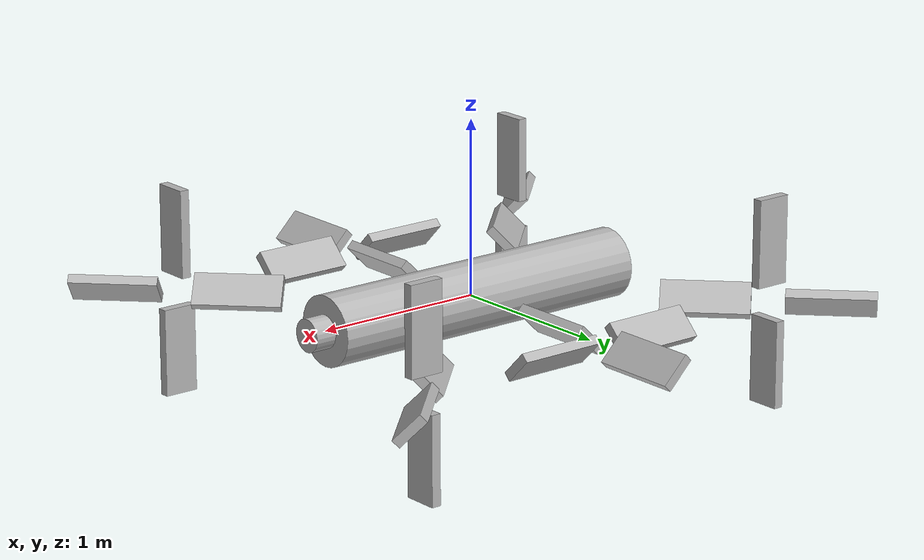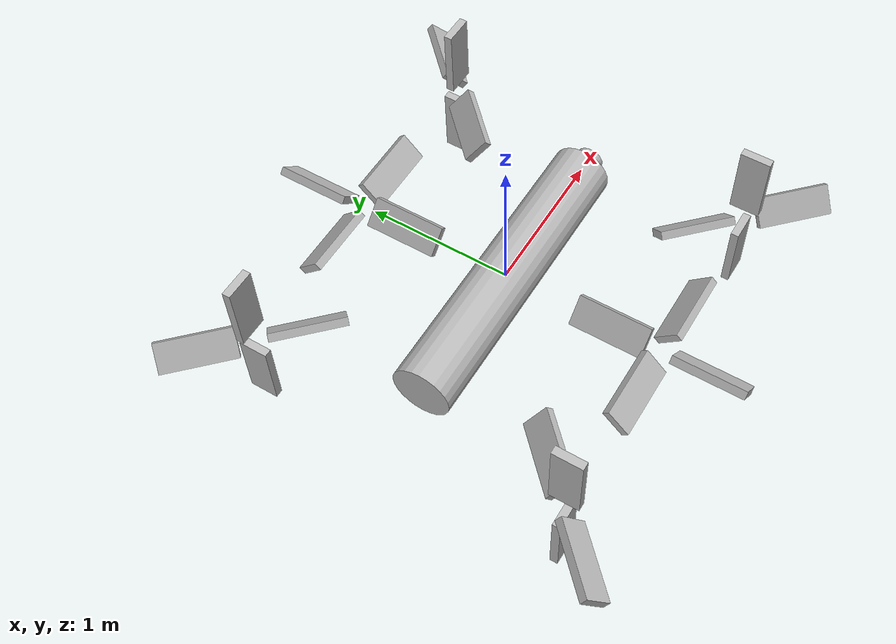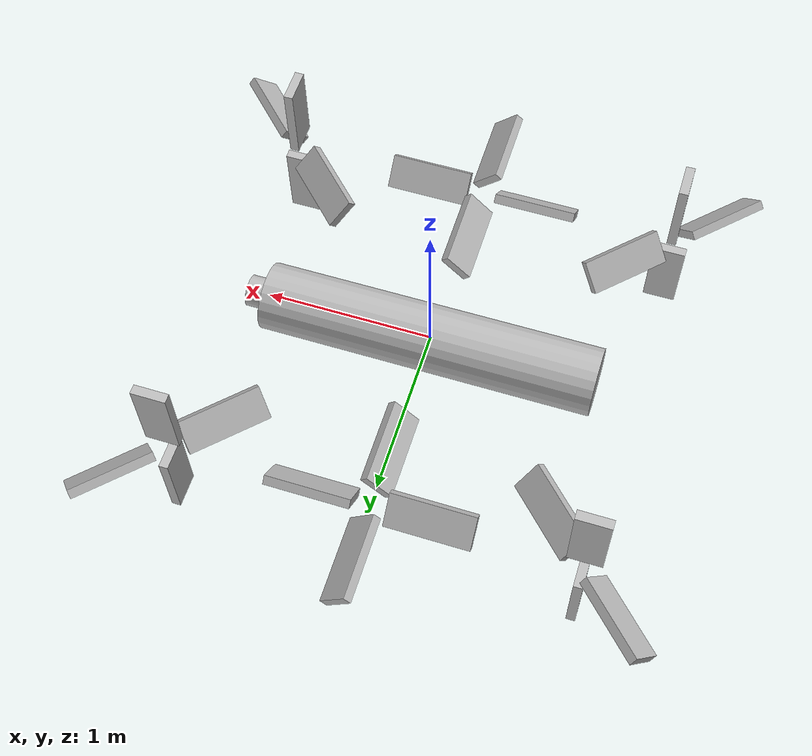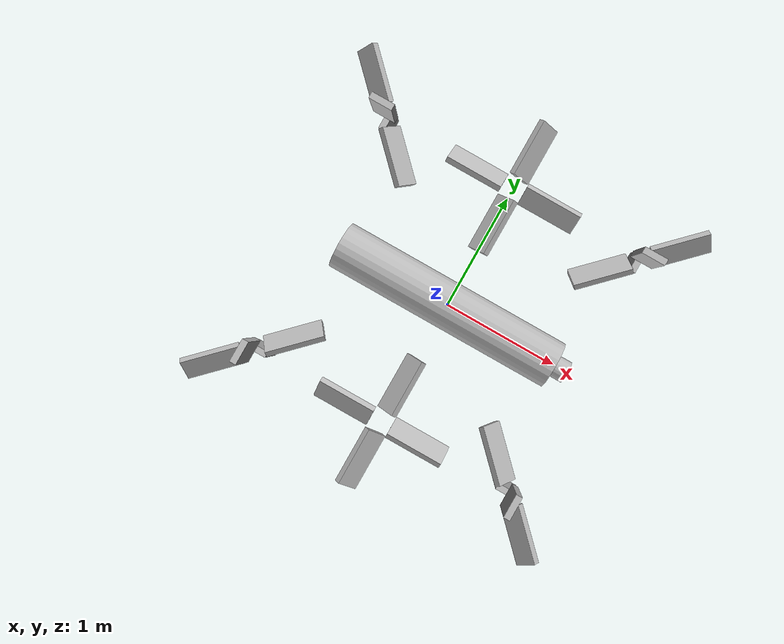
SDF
<?xml version="1.0" ?>
<sdf version="1.6">
  <world name="buoyancy">

    <physics name="1ms" type="ode">
      <max_step_size>0.001</max_step_size>
      <real_time_factor>1.0</real_time_factor>
    </physics>
    <plugin
      filename="libignition-gazebo-physics-system.so"
      name="ignition::gazebo::systems::Physics">
    </plugin>
    <plugin
      filename="libignition-gazebo-user-commands-system.so"
      name="ignition::gazebo::systems::UserCommands">
    </plugin>
    <plugin
      filename="libignition-gazebo-scene-broadcaster-system.so"
      name="ignition::gazebo::systems::SceneBroadcaster">
    </plugin>
    <plugin
      filename="libignition-gazebo-imu-system.so"
      name="ignition::gazebo::systems::Imu">
    </plugin>
    <plugin
      filename="libignition-gazebo-buoyancy-system.so"
      name="ignition::gazebo::systems::Buoyancy">
      <uniform_fluid_density>1000</uniform_fluid_density>
    </plugin>

    <gui fullscreen="0">

      <!-- 3D scene -->
      <plugin filename="GzScene3D" name="3D View">
        <ignition-gui>
          <title>3D View</title>
          <property type="bool" key="showTitleBar">false</property>
          <property type="string" key="state">docked</property>
        </ignition-gui>

        <engine>ogre2</engine>
        <scene>scene</scene>
        <ambient_light>0.4 0.4 0.4</ambient_light>
        <background_color>0.8 0.8 0.8</background_color>
        <camera_pose>-6 0 6 0 0.5 0</camera_pose>
      </plugin>

      <!-- World control -->
      <plugin filename="WorldControl" name="World control">
        <ignition-gui>
          <title>World control</title>
          <property type="bool" key="showTitleBar">false</property>
          <property type="bool" key="resizable">false</property>
          <property type="double" key="height">72</property>
          <property type="double" key="width">121</property>
          <property type="double" key="z">1</property>

          <property type="string" key="state">floating</property>
          <anchors target="3D View">
            <line own="left" target="left"/>
            <line own="bottom" target="bottom"/>
          </anchors>
        </ignition-gui>

        <play_pause>true</play_pause>
        <step>true</step>
        <start_paused>true</start_paused>
        <service>/world/buoyancy/control</service>
        <stats_topic>/world/buoyancy/stats</stats_topic>

      </plugin>

      <!-- World statistics -->
      <plugin filename="WorldStats" name="World stats">
        <ignition-gui>
          <title>World stats</title>
          <property type="bool" key="showTitleBar">false</property>
          <property type="bool" key="resizable">false</property>
          <property type="double" key="height">110</property>
          <property type="double" key="width">290</property>
          <property type="double" key="z">1</property>

          <property type="string" key="state">floating</property>
          <anchors target="3D View">
            <line own="right" target="right"/>
            <line own="bottom" target="bottom"/>
          </anchors>
        </ignition-gui>

        <sim_time>true</sim_time>
        <real_time>true</real_time>
        <real_time_factor>true</real_time_factor>
        <iterations>true</iterations>
        <topic>/world/buoyancy/stats</topic>
      </plugin>

    </gui>

    <light type="directional" name="sun">
      <cast_shadows>true</cast_shadows>
      <pose>0 0 10 0 0 0</pose>
      <diffuse>1 1 1 1</diffuse>
      <specular>0.5 0.5 0.5 1</specular>
      <attenuation>
        <range>1000</range>
        <constant>0.9</constant>
        <linear>0.01</linear>
        <quadratic>0.001</quadratic>
      </attenuation>
      <direction>-0.5 0.1 -0.9</direction>
    </light>

    <model name='submarine'>
      <pose>0 0 0 0 0 0</pose>
      <link name='body'>
        <pose>0 0 0 0 1.5707963 0</pose>
        <inertial>
          <mass>251.32741228718348</mass>
          <inertia>
            <ixx>86.28907821859966</ixx>
            <ixy>0</ixy>
            <ixz>0</ixz>
            <iyy>86.28907821859966</iyy>
            <iyz>0</iyz>
            <izz>5.026548245743671</izz>
          </inertia>
        </inertial>

        <visual name='body_visual'>
          <geometry>
            <cylinder>
              <radius>0.2</radius>
              <length>2</length>
            </cylinder>
          </geometry>
        </visual>
        <collision name='body_collision'>
          <geometry>
            <cylinder>
              <radius>0.2</radius>
              <length>2</length>
            </cylinder>
          </geometry>
        </collision>

        <visual name='spacer_visual'>
          <pose>0 0 1.05855 0 0 0</pose>
          <geometry>
            <cylinder>
              <radius>0.0933402</radius>
              <length>0.127211</length>
            </cylinder>
          </geometry>
        </visual>

        <sensor name="imu_sensor" type="imu">
          <pose>0 0 0 3.141593 -1.5707963 0</pose>
          <always_on>1</always_on>
          <update_rate>1000.0</update_rate>
        </sensor>

      </link>

      <link name='thruster1'>
        <pose>1.2 -1.1 0 1.5707963 1.5707963 -0.78539815</pose>
        <inertial>
          <mass>21.820000000000004</mass>
          <inertia>
            <ixx>0.45999415237916674</ixx>
            <ixy>0</ixy>
            <ixz>0</ixz>
            <iyy>0.45999415237916674</iyy>
            <iyz>0</iyz>
            <izz>0.9091666666666668</izz>
          </inertia>
        </inertial>

        <visual name="blade1_visual">
          <pose>0.3433402 0.0 0 -0.7853981633974483 0 0.0</pose>
          <geometry>
            <box>
              <size>0.5 0.2 0.05455</size>
            </box>
          </geometry>
        </visual>
        <collision name="blade1_collision">
          <pose>0.3433402 0.0 0 -0.7853981633974483 0 0.0</pose>
          <geometry>
            <box>
              <size>0.5 0.2 0.05455</size>
            </box>
          </geometry>
        </collision>

        <visual name="blade2_visual">
          <pose>0.0 0.3433402 0 -0.7853981633974483 0 1.5707963267948966</pose>
          <geometry>
            <box>
              <size>0.5 0.2 0.05455</size>
            </box>
          </geometry>
        </visual>
        <collision name="blade2_collision">
          <pose>0.0 0.3433402 0 -0.7853981633974483 0 1.5707963267948966</pose>
          <geometry>
            <box>
              <size>0.5 0.2 0.05455</size>
            </box>
          </geometry>
        </collision>

        <visual name="blade3_visual">
          <pose>-0.3433402 -0.0 0 0.7853981633974483 0 0.0</pose>
          <geometry>
            <box>
              <size>0.5 0.2 0.05455</size>
            </box>
          </geometry>
        </visual>
        <collision name="blade3_collision">
          <pose>-0.3433402 -0.0 0 0.7853981633974483 0 0.0</pose>
          <geometry>
            <box>
              <size>0.5 0.2 0.05455</size>
            </box>
          </geometry>
        </collision>

        <visual name="blade4_visual">
          <pose>-0.0 -0.3433402 0 0.7853981633974483 0 1.5707963267948966</pose>
          <geometry>
            <box>
              <size>0.5 0.2 0.05455</size>
            </box>
          </geometry>
        </visual>
        <collision name="blade4_collision">
          <pose>-0.0 -0.3433402 0 0.7853981633974483 0 1.5707963267948966</pose>
          <geometry>
            <box>
              <size>0.5 0.2 0.05455</size>
            </box>
          </geometry>
        </collision>

      </link>

      <joint name='thruster1_joint' type='revolute'>
        <parent>body</parent>
        <child>thruster1</child>
        <axis>
          <xyz>0 0 -1</xyz>
          <use_parent_model_frame>0</use_parent_model_frame>
          <limit>
            <lower>-1e+12</lower>
            <upper>1e+12</upper>
            <effort>-1</effort>
            <velocity>-1</velocity>
          </limit>
        </axis>
      </joint>

      <link name='thruster2'>
        <pose>1.2 1.1 0 1.5707963 1.5707963 3.92699075</pose>
        <inertial>
          <mass>21.820000000000004</mass>
          <inertia>
            <ixx>0.45999415237916674</ixx>
            <ixy>0</ixy>
            <ixz>0</ixz>
            <iyy>0.45999415237916674</iyy>
            <iyz>0</iyz>
            <izz>0.9091666666666668</izz>
          </inertia>
        </inertial>

        <visual name="blade1_visual">
          <pose>0.3433402 0.0 0 -0.7853981633974483 0 0.0</pose>
          <geometry>
            <box>
              <size>0.5 0.2 0.05455</size>
            </box>
          </geometry>
        </visual>
        <collision name="blade1_collision">
          <pose>0.3433402 0.0 0 -0.7853981633974483 0 0.0</pose>
          <geometry>
            <box>
              <size>0.5 0.2 0.05455</size>
            </box>
          </geometry>
        </collision>

        <visual name="blade2_visual">
          <pose>0.0 0.3433402 0 -0.7853981633974483 0 1.5707963267948966</pose>
          <geometry>
            <box>
              <size>0.5 0.2 0.05455</size>
            </box>
          </geometry>
        </visual>
        <collision name="blade2_collision">
          <pose>0.0 0.3433402 0 -0.7853981633974483 0 1.5707963267948966</pose>
          <geometry>
            <box>
              <size>0.5 0.2 0.05455</size>
            </box>
          </geometry>
        </collision>

        <visual name="blade3_visual">
          <pose>-0.3433402 -0.0 0 0.7853981633974483 0 0.0</pose>
          <geometry>
            <box>
              <size>0.5 0.2 0.05455</size>
            </box>
          </geometry>
        </visual>
        <collision name="blade3_collision">
          <pose>-0.3433402 -0.0 0 0.7853981633974483 0 0.0</pose>
          <geometry>
            <box>
              <size>0.5 0.2 0.05455</size>
            </box>
          </geometry>
        </collision>

        <visual name="blade4_visual">
          <pose>-0.0 -0.3433402 0 0.7853981633974483 0 1.5707963267948966</pose>
          <geometry>
            <box>
              <size>0.5 0.2 0.05455</size>
            </box>
          </geometry>
        </visual>
        <collision name="blade4_collision">
          <pose>-0.0 -0.3433402 0 0.7853981633974483 0 1.5707963267948966</pose>
          <geometry>
            <box>
              <size>0.5 0.2 0.05455</size>
            </box>
          </geometry>
        </collision>

      </link>

      <joint name='thruster2_joint' type='revolute'>
        <parent>body</parent>
        <child>thruster2</child>
        <axis>
          <xyz>0 0 -1</xyz>
          <use_parent_model_frame>0</use_parent_model_frame>
          <limit>
            <lower>-1e+12</lower>
            <upper>1e+12</upper>
            <effort>-1</effort>
            <velocity>-1</velocity>
          </limit>
        </axis>
      </joint>

      <link name='thruster3'>
        <pose>-1.2 -1.1 0 1.5707963 1.5707963 0.78540075</pose>
        <inertial>
          <mass>21.820000000000004</mass>
          <inertia>
            <ixx>0.45999415237916674</ixx>
            <ixy>0</ixy>
            <ixz>0</ixz>
            <iyy>0.45999415237916674</iyy>
            <iyz>0</iyz>
            <izz>0.9091666666666668</izz>
          </inertia>
        </inertial>

        <visual name="blade1_visual">
          <pose>0.3433402 0.0 0 0.7853981633974483 0 0.0</pose>
          <geometry>
            <box>
              <size>0.5 0.2 0.05455</size>
            </box>
          </geometry>
        </visual>
        <collision name="blade1_collision">
          <pose>0.3433402 0.0 0 0.7853981633974483 0 0.0</pose>
          <geometry>
            <box>
              <size>0.5 0.2 0.05455</size>
            </box>
          </geometry>
        </collision>

        <visual name="blade2_visual">
          <pose>0.0 0.3433402 0 0.7853981633974483 0 1.5707963267948966</pose>
          <geometry>
            <box>
              <size>0.5 0.2 0.05455</size>
            </box>
          </geometry>
        </visual>
        <collision name="blade2_collision">
          <pose>0.0 0.3433402 0 0.7853981633974483 0 1.5707963267948966</pose>
          <geometry>
            <box>
              <size>0.5 0.2 0.05455</size>
            </box>
          </geometry>
        </collision>

        <visual name="blade3_visual">
          <pose>-0.3433402 -0.0 0 -0.7853981633974483 0 0.0</pose>
          <geometry>
            <box>
              <size>0.5 0.2 0.05455</size>
            </box>
          </geometry>
        </visual>
        <collision name="blade3_collision">
          <pose>-0.3433402 -0.0 0 -0.7853981633974483 0 0.0</pose>
          <geometry>
            <box>
              <size>0.5 0.2 0.05455</size>
            </box>
          </geometry>
        </collision>

        <visual name="blade4_visual">
          <pose>-0.0 -0.3433402 0 -0.7853981633974483 0 1.5707963267948966</pose>
          <geometry>
            <box>
              <size>0.5 0.2 0.05455</size>
            </box>
          </geometry>
        </visual>
        <collision name="blade4_collision">
          <pose>-0.0 -0.3433402 0 -0.7853981633974483 0 1.5707963267948966</pose>
          <geometry>
            <box>
              <size>0.5 0.2 0.05455</size>
            </box>
          </geometry>
        </collision>

      </link>

      <joint name='thruster3_joint' type='revolute'>
        <parent>body</parent>
        <child>thruster3</child>
        <axis>
          <xyz>0 0 -1</xyz>
          <use_parent_model_frame>0</use_parent_model_frame>
          <limit>
            <lower>-1e+12</lower>
            <upper>1e+12</upper>
            <effort>-1</effort>
            <velocity>-1</velocity>
          </limit>
        </axis>
      </joint>

      <link name='thruster4'>
        <pose>-1.2 1.1 0 1.5707963 1.5707963 2.35619445</pose>
        <inertial>
          <mass>21.820000000000004</mass>
          <inertia>
            <ixx>0.45999415237916674</ixx>
            <ixy>0</ixy>
            <ixz>0</ixz>
            <iyy>0.45999415237916674</iyy>
            <iyz>0</iyz>
            <izz>0.9091666666666668</izz>
          </inertia>
        </inertial>

        <visual name="blade1_visual">
          <pose>0.3433402 0.0 0 0.7853981633974483 0 0.0</pose>
          <geometry>
            <box>
              <size>0.5 0.2 0.05455</size>
            </box>
          </geometry>
        </visual>
        <collision name="blade1_collision">
          <pose>0.3433402 0.0 0 0.7853981633974483 0 0.0</pose>
          <geometry>
            <box>
              <size>0.5 0.2 0.05455</size>
            </box>
          </geometry>
        </collision>

        <visual name="blade2_visual">
          <pose>0.0 0.3433402 0 0.7853981633974483 0 1.5707963267948966</pose>
          <geometry>
            <box>
              <size>0.5 0.2 0.05455</size>
            </box>
          </geometry>
        </visual>
        <collision name="blade2_collision">
          <pose>0.0 0.3433402 0 0.7853981633974483 0 1.5707963267948966</pose>
          <geometry>
            <box>
              <size>0.5 0.2 0.05455</size>
            </box>
          </geometry>
        </collision>

        <visual name="blade3_visual">
          <pose>-0.3433402 -0.0 0 -0.7853981633974483 0 0.0</pose>
          <geometry>
            <box>
              <size>0.5 0.2 0.05455</size>
            </box>
          </geometry>
        </visual>
        <collision name="blade3_collision">
          <pose>-0.3433402 -0.0 0 -0.7853981633974483 0 0.0</pose>
          <geometry>
            <box>
              <size>0.5 0.2 0.05455</size>
            </box>
          </geometry>
        </collision>

        <visual name="blade4_visual">
          <pose>-0.0 -0.3433402 0 -0.7853981633974483 0 1.5707963267948966</pose>
          <geometry>
            <box>
              <size>0.5 0.2 0.05455</size>
            </box>
          </geometry>
        </visual>
        <collision name="blade4_collision">
          <pose>-0.0 -0.3433402 0 -0.7853981633974483 0 1.5707963267948966</pose>
          <geometry>
            <box>
              <size>0.5 0.2 0.05455</size>
            </box>
          </geometry>
        </collision>

      </link>

      <joint name='thruster4_joint' type='revolute'>
        <parent>body</parent>
        <child>thruster4</child>
        <axis>
          <xyz>0 0 -1</xyz>
          <use_parent_model_frame>0</use_parent_model_frame>
          <limit>
            <lower>-1e+12</lower>
            <upper>1e+12</upper>
            <effort>-1</effort>
            <velocity>-1</velocity>
          </limit>
        </axis>
      </joint>

      <link name='thruster5'>
        <pose>0 -1.1 0 3.1415926 0 0</pose>
        <inertial>
          <mass>21.820000000000004</mass>
          <inertia>
            <ixx>0.45999415237916674</ixx>
            <ixy>0</ixy>
            <ixz>0</ixz>
            <iyy>0.45999415237916674</iyy>
            <iyz>0</iyz>
            <izz>0.9091666666666668</izz>
          </inertia>
        </inertial>

        <visual name="blade1_visual">
          <pose>0.3433402 0.0 0 -0.7853981633974483 0 0.0</pose>
          <geometry>
            <box>
              <size>0.5 0.2 0.05455</size>
            </box>
          </geometry>
        </visual>
        <collision name="blade1_collision">
          <pose>0.3433402 0.0 0 -0.7853981633974483 0 0.0</pose>
          <geometry>
            <box>
              <size>0.5 0.2 0.05455</size>
            </box>
          </geometry>
        </collision>

        <visual name="blade2_visual">
          <pose>0.0 0.3433402 0 -0.7853981633974483 0 1.5707963267948966</pose>
          <geometry>
            <box>
              <size>0.5 0.2 0.05455</size>
            </box>
          </geometry>
        </visual>
        <collision name="blade2_collision">
          <pose>0.0 0.3433402 0 -0.7853981633974483 0 1.5707963267948966</pose>
          <geometry>
            <box>
              <size>0.5 0.2 0.05455</size>
            </box>
          </geometry>
        </collision>

        <visual name="blade3_visual">
          <pose>-0.3433402 -0.0 0 0.7853981633974483 0 0.0</pose>
          <geometry>
            <box>
              <size>0.5 0.2 0.05455</size>
            </box>
          </geometry>
        </visual>
        <collision name="blade3_collision">
          <pose>-0.3433402 -0.0 0 0.7853981633974483 0 0.0</pose>
          <geometry>
            <box>
              <size>0.5 0.2 0.05455</size>
            </box>
          </geometry>
        </collision>

        <visual name="blade4_visual">
          <pose>-0.0 -0.3433402 0 0.7853981633974483 0 1.5707963267948966</pose>
          <geometry>
            <box>
              <size>0.5 0.2 0.05455</size>
            </box>
          </geometry>
        </visual>
        <collision name="blade4_collision">
          <pose>-0.0 -0.3433402 0 0.7853981633974483 0 1.5707963267948966</pose>
          <geometry>
            <box>
              <size>0.5 0.2 0.05455</size>
            </box>
          </geometry>
        </collision>

      </link>

      <joint name='thruster5_joint' type='revolute'>
        <parent>body</parent>
        <child>thruster5</child>
        <axis>
          <xyz>0 0 -1</xyz>
          <use_parent_model_frame>0</use_parent_model_frame>
          <limit>
            <lower>-1e+12</lower>
            <upper>1e+12</upper>
            <effort>-1</effort>
            <velocity>-1</velocity>
          </limit>
        </axis>
      </joint>

      <link name='thruster6'>
        <pose>0 1.1 0 3.1415926 0 0</pose>
        <inertial>
          <mass>21.820000000000004</mass>
          <inertia>
            <ixx>0.45999415237916674</ixx>
            <ixy>0</ixy>
            <ixz>0</ixz>
            <iyy>0.45999415237916674</iyy>
            <iyz>0</iyz>
            <izz>0.9091666666666668</izz>
          </inertia>
        </inertial>

        <visual name="blade1_visual">
          <pose>0.3433402 0.0 0 0.7853981633974483 0 0.0</pose>
          <geometry>
            <box>
              <size>0.5 0.2 0.05455</size>
            </box>
          </geometry>
        </visual>
        <collision name="blade1_collision">
          <pose>0.3433402 0.0 0 0.7853981633974483 0 0.0</pose>
          <geometry>
            <box>
              <size>0.5 0.2 0.05455</size>
            </box>
          </geometry>
        </collision>

        <visual name="blade2_visual">
          <pose>0.0 0.3433402 0 0.7853981633974483 0 1.5707963267948966</pose>
          <geometry>
            <box>
              <size>0.5 0.2 0.05455</size>
            </box>
          </geometry>
        </visual>
        <collision name="blade2_collision">
          <pose>0.0 0.3433402 0 0.7853981633974483 0 1.5707963267948966</pose>
          <geometry>
            <box>
              <size>0.5 0.2 0.05455</size>
            </box>
          </geometry>
        </collision>

        <visual name="blade3_visual">
          <pose>-0.3433402 -0.0 0 -0.7853981633974483 0 0.0</pose>
          <geometry>
            <box>
              <size>0.5 0.2 0.05455</size>
            </box>
          </geometry>
        </visual>
        <collision name="blade3_collision">
          <pose>-0.3433402 -0.0 0 -0.7853981633974483 0 0.0</pose>
          <geometry>
            <box>
              <size>0.5 0.2 0.05455</size>
            </box>
          </geometry>
        </collision>

        <visual name="blade4_visual">
          <pose>-0.0 -0.3433402 0 -0.7853981633974483 0 1.5707963267948966</pose>
          <geometry>
            <box>
              <size>0.5 0.2 0.05455</size>
            </box>
          </geometry>
        </visual>
        <collision name="blade4_collision">
          <pose>-0.0 -0.3433402 0 -0.7853981633974483 0 1.5707963267948966</pose>
          <geometry>
            <box>
              <size>0.5 0.2 0.05455</size>
            </box>
          </geometry>
        </collision>

      </link>

      <joint name='thruster6_joint' type='revolute'>
        <parent>body</parent>
        <child>thruster6</child>
        <axis>
          <xyz>0 0 -1</xyz>
          <use_parent_model_frame>0</use_parent_model_frame>
          <limit>
            <lower>-1e+12</lower>
            <upper>1e+12</upper>
            <effort>-1</effort>
            <velocity>-1</velocity>
          </limit>
        </axis>
      </joint>

      <plugin
        filename="libignition-gazebo-joint-state-publisher-system.so"
	name="ignition::gazebo::systems::JointStatePublisher">
      </plugin>

      <plugin
        filename="libignition-gazebo-apply-joint-force-system.so"
        name="ignition::gazebo::systems::ApplyJointForce">
        <joint_name>thruster1_joint</joint_name>
      </plugin>
      <plugin
        filename="libignition-gazebo-apply-joint-force-system.so"
        name="ignition::gazebo::systems::ApplyJointForce">
        <joint_name>thruster2_joint</joint_name>
      </plugin>
      <plugin
        filename="libignition-gazebo-apply-joint-force-system.so"
        name="ignition::gazebo::systems::ApplyJointForce">
        <joint_name>thruster3_joint</joint_name>
      </plugin>
      <plugin
        filename="libignition-gazebo-apply-joint-force-system.so"
        name="ignition::gazebo::systems::ApplyJointForce">
        <joint_name>thruster4_joint</joint_name>
      </plugin>
      <plugin
        filename="libignition-gazebo-apply-joint-force-system.so"
        name="ignition::gazebo::systems::ApplyJointForce">
        <joint_name>thruster5_joint</joint_name>
      </plugin>
      <plugin
        filename="libignition-gazebo-apply-joint-force-system.so"
        name="ignition::gazebo::systems::ApplyJointForce">
        <joint_name>thruster6_joint</joint_name>
      </plugin>

      <plugin
        filename="libignition-gazebo-lift-drag-system.so"
        name="ignition::gazebo::systems::LiftDrag">
        <air_density>1000</air_density>
        <cla>1.2535816618911175</cla>
        <cla_stall>-1.4326647564469914</cla_stall>
        <cda>0</cda>
        <cda_stall>1.4326647564469914</cda_stall>
        <alpha_stall>1.396</alpha_stall>
        <a0>0</a0>
        <area>0.4</area>
        <upward>0 -0.7071067811865476 -0.7071067811865475</upward>
        <forward>0 -0.7071067811865475 0.7071067811865476</forward>
        <link_name>thruster1</link_name>
        <cp>0.35 0 0</cp>
      </plugin>

      <plugin
        filename="libignition-gazebo-lift-drag-system.so"
        name="ignition::gazebo::systems::LiftDrag">
        <air_density>1000</air_density>
        <cla>1.2535816618911175</cla>
        <cla_stall>-1.4326647564469914</cla_stall>
        <cda>0</cda>
        <cda_stall>1.4326647564469914</cda_stall>
        <alpha_stall>1.396</alpha_stall>
        <a0>0</a0>
        <area>0.4</area>
        <upward>0 -0.7071067811865476 -0.7071067811865475</upward>
        <forward>0 -0.7071067811865475 0.7071067811865476</forward>
        <link_name>thruster2</link_name>
        <cp>0.35 0 0</cp>
      </plugin>

      <plugin
        filename="libignition-gazebo-lift-drag-system.so"
        name="ignition::gazebo::systems::LiftDrag">
        <air_density>1000</air_density>
        <cla>1.2535816618911175</cla>
        <cla_stall>-1.4326647564469914</cla_stall>
        <cda>0</cda>
        <cda_stall>1.4326647564469914</cda_stall>
        <alpha_stall>1.396</alpha_stall>
        <a0>0</a0>
        <area>0.27637</area>
        <upward>0 -0.7071067811865476 0.7071067811865475</upward>
        <forward>0 -0.7071067811865475 -0.7071067811865476</forward>
        <link_name>thruster3</link_name>
        <cp>0.35 0 0</cp>
      </plugin>

      <plugin
        filename="libignition-gazebo-lift-drag-system.so"
        name="ignition::gazebo::systems::LiftDrag">
        <air_density>1000</air_density>
        <cla>1.2535816618911175</cla>
        <cla_stall>-1.4326647564469914</cla_stall>
        <cda>0</cda>
        <cda_stall>1.4326647564469914</cda_stall>
        <alpha_stall>1.396</alpha_stall>
        <a0>0</a0>
        <area>0.27637</area>
        <upward>0 -0.7071067811865476 0.7071067811865475</upward>
        <forward>0 -0.7071067811865475 -0.7071067811865476</forward>
        <link_name>thruster4</link_name>
        <cp>0.35 0 0</cp>
      </plugin>

      <plugin
        filename="libignition-gazebo-lift-drag-system.so"
        name="ignition::gazebo::systems::LiftDrag">
        <air_density>1000</air_density>
        <cla>1.2535816618911175</cla>
        <cla_stall>-1.4326647564469914</cla_stall>
        <cda>0</cda>
        <cda_stall>1.4326647564469914</cda_stall>
        <alpha_stall>1.396</alpha_stall>
        <a0>0</a0>
        <area>0.27637</area>
        <upward>0 -0.7071067811865476 -0.7071067811865475</upward>
        <forward>0 -0.7071067811865475 0.7071067811865476</forward>
        <link_name>thruster5</link_name>
        <cp>0.35 0 0</cp>
      </plugin>

      <plugin
        filename="libignition-gazebo-lift-drag-system.so"
        name="ignition::gazebo::systems::LiftDrag">
        <air_density>1000</air_density>
        <cla>1.2535816618911175</cla>
        <cla_stall>-1.4326647564469914</cla_stall>
        <cda>0</cda>
        <cda_stall>1.4326647564469914</cda_stall>
        <alpha_stall>1.396</alpha_stall>
        <a0>0</a0>
        <area>0.27637</area>
        <upward>0 -0.7071067811865476 0.7071067811865475</upward>
        <forward>0 -0.7071067811865475 -0.7071067811865476</forward>
        <link_name>thruster6</link_name>
        <cp>0.35 0 0</cp>
      </plugin>

      <plugin name="ArduPilotPlugin" filename="libArduPilotPlugin.so">
        <fdm_addr>127.0.0.1</fdm_addr>
        <fdm_port_in>9002</fdm_port_in>
        <fdm_port_out>9003</fdm_port_out>
        <!--
            Require by APM :
            Only change model and gazebo from XYZ to XY-Z coordinates
        -->
        <modelXYZToAirplaneXForwardZDown>0 0 0 3.141593 0 0</modelXYZToAirplaneXForwardZDown>
        <gazeboXYZToNED>0 0 0 3.141593 0 0</gazeboXYZToNED>
        <imuName>imu_sensor</imuName>
        <connectionTimeoutMaxCount>5</connectionTimeoutMaxCount>
        <control channel="0">
          <type>VELOCITY</type>
          <offset>-0.5</offset>
          <p_gain>100.0</p_gain>
          <i_gain>10</i_gain>
          <d_gain>0</d_gain>
          <i_max>0</i_max>
          <i_min>0</i_min>
          <cmd_max>25</cmd_max>
          <cmd_min>-25</cmd_min>
          <jointName>thruster1_joint</jointName>
          <multiplier>100</multiplier>
          <controlVelocitySlowdownSim>1</controlVelocitySlowdownSim>
        </control>
        <control channel="1">
          <type>VELOCITY</type>
          <offset>-0.5</offset>
          <p_gain>100.0</p_gain>
          <i_gain>10</i_gain>
          <d_gain>0</d_gain>
          <i_max>0</i_max>
          <i_min>0</i_min>
          <cmd_max>25</cmd_max>
          <cmd_min>-25</cmd_min>
          <jointName>thruster2_joint</jointName>
          <multiplier>100</multiplier>
          <controlVelocitySlowdownSim>1</controlVelocitySlowdownSim>
        </control>
        <control channel="2">
          <type>VELOCITY</type>
          <offset>-0.5</offset>
          <p_gain>100.0</p_gain>
          <i_gain>10</i_gain>
          <d_gain>0</d_gain>
          <i_max>0</i_max>
          <i_min>0</i_min>
          <cmd_max>25</cmd_max>
          <cmd_min>-25</cmd_min>
          <jointName>thruster3_joint</jointName>
          <multiplier>-100</multiplier>
          <controlVelocitySlowdownSim>1</controlVelocitySlowdownSim>
        </control>
        <control channel="3">
          <type>VELOCITY</type>
          <offset>-0.5</offset>
          <p_gain>100.0</p_gain>
          <i_gain>10</i_gain>
          <d_gain>0</d_gain>
          <i_max>0</i_max>
          <i_min>0</i_min>
          <cmd_max>25</cmd_max>
          <cmd_min>-25</cmd_min>
          <jointName>thruster4_joint</jointName>
          <multiplier>-100</multiplier>
          <controlVelocitySlowdownSim>1</controlVelocitySlowdownSim>
        </control>
        <control channel="4">
          <type>VELOCITY</type>
          <offset>-0.5</offset>
          <p_gain>100.0</p_gain>
          <i_gain>10</i_gain>
          <d_gain>0</d_gain>
          <i_max>0</i_max>
          <i_min>0</i_min>
          <cmd_max>25</cmd_max>
          <cmd_min>-25</cmd_min>
          <jointName>thruster5_joint</jointName>
          <multiplier>100</multiplier>
          <controlVelocitySlowdownSim>1</controlVelocitySlowdownSim>
        </control>
        <control channel="5">
          <type>VELOCITY</type>
          <offset>-0.5</offset>
          <p_gain>100.0</p_gain>
          <i_gain>10</i_gain>
          <d_gain>0</d_gain>
          <i_max>0</i_max>
          <i_min>0</i_min>
          <cmd_max>25</cmd_max>
          <cmd_min>-25</cmd_min>
          <jointName>thruster6_joint</jointName>
          <multiplier>-100</multiplier>
          <controlVelocitySlowdownSim>1</controlVelocitySlowdownSim>
        </control>
      </plugin>

    </model>
  </world>
</sdf>
